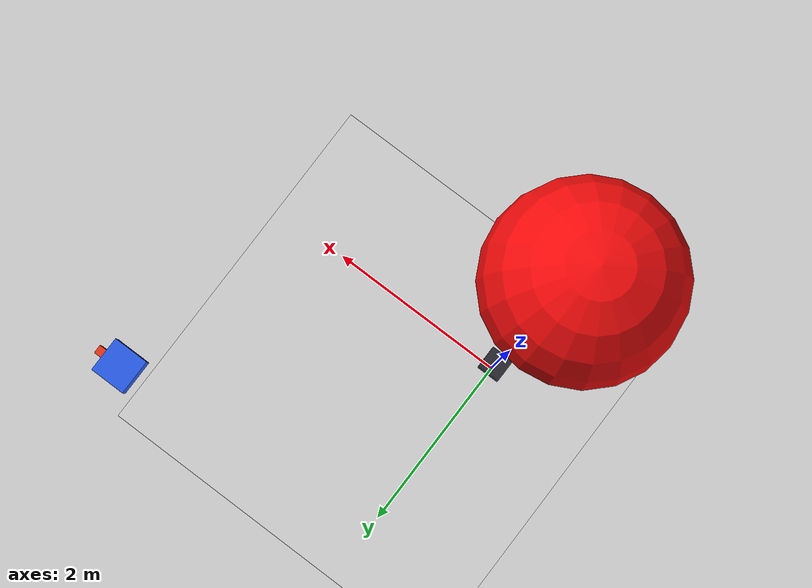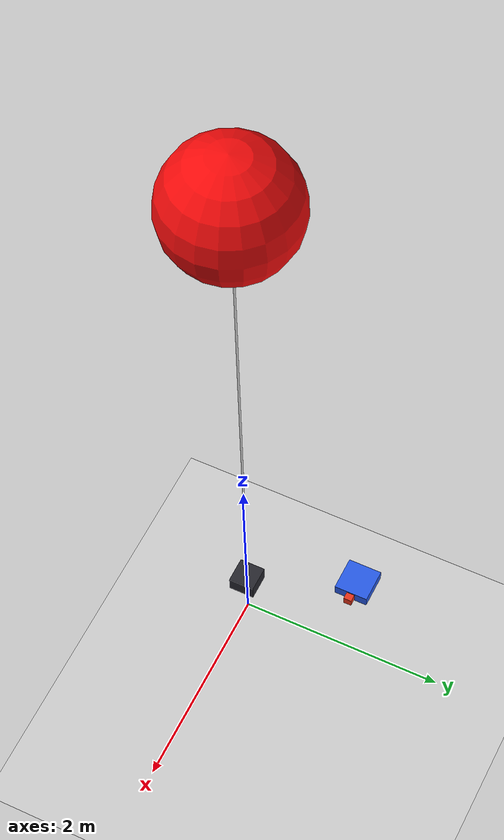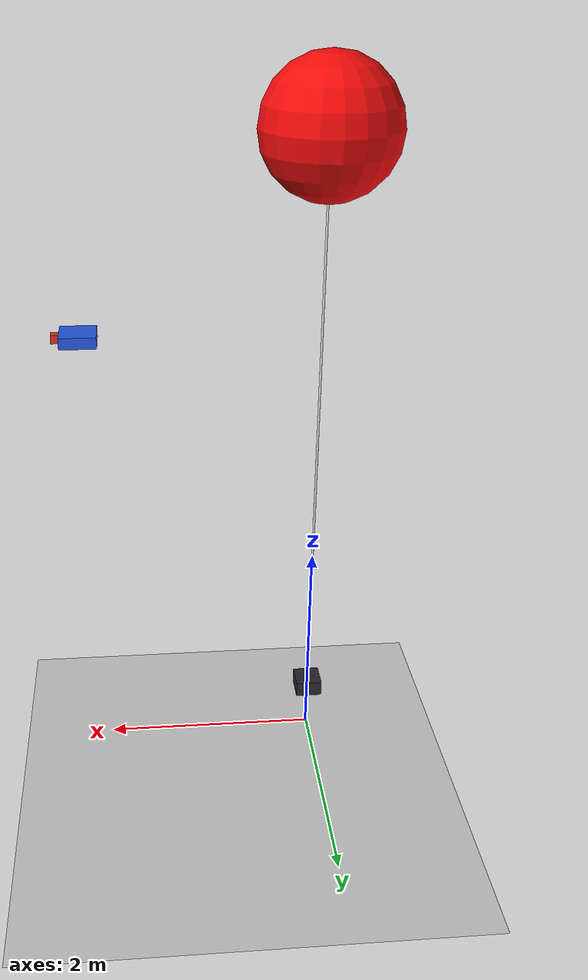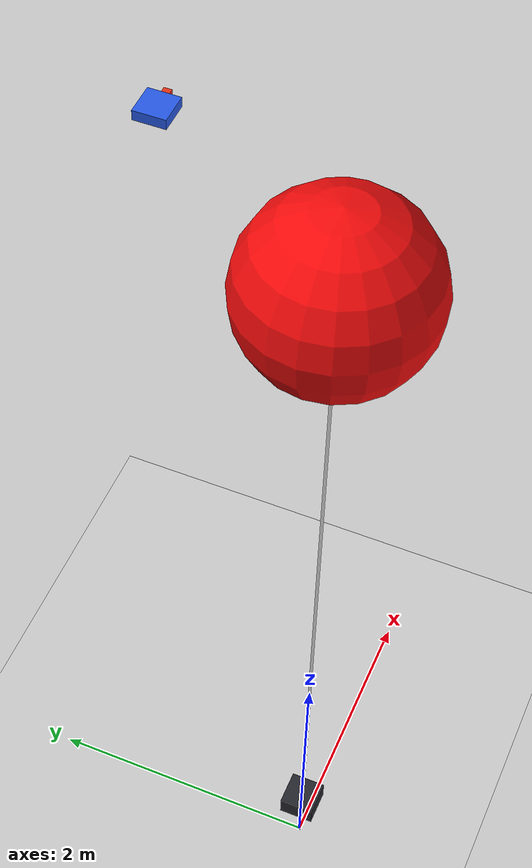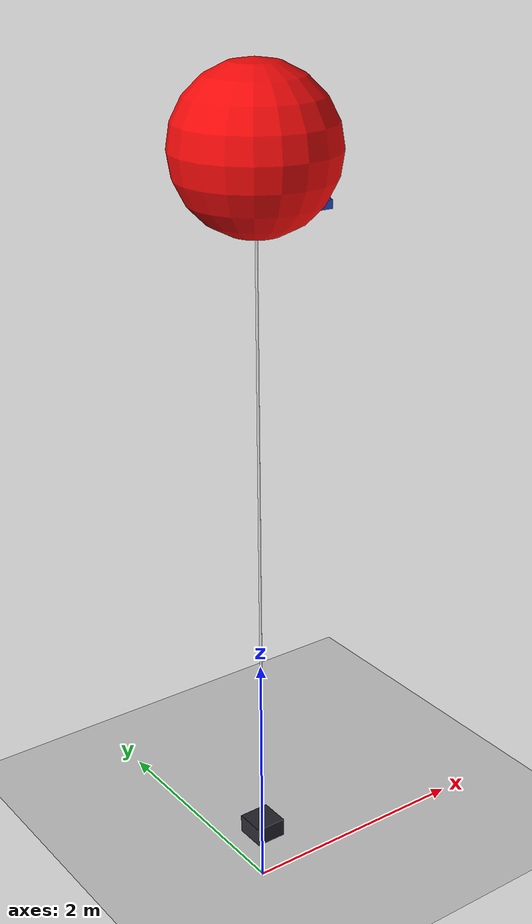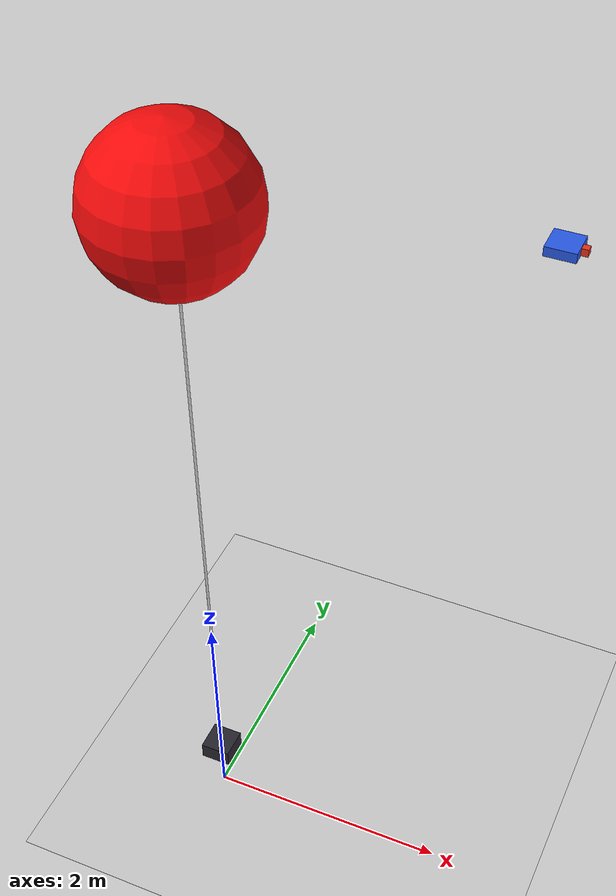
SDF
<?xml version="1.0"?>

<sdf version="1.6">
  <world name="balloon_observation">
    <gravity>0 0 -9.81</gravity>

    <include>
      <uri>model://sun</uri>
    </include>

    <include>
      <uri>model://ground_plane</uri>
    </include>

    <scene>
      <ambient>0.65 0.65 0.65 1</ambient>
      <background>0.45 0.70 0.95 1</background>
      <shadows>true</shadows>
    </scene>

    <model name="fixed_observation_camera">
      <static>true</static>
      <pose>0 0 0.5 0 0 0</pose>

      <link name="camera_link">
        <visual name="housing">
          <geometry>
            <box>
              <size>0.25 0.25 0.15</size>
            </box>
          </geometry>
          <material>
            <ambient>0.15 0.15 0.18 1</ambient>
            <diffuse>0.15 0.15 0.18 1</diffuse>
          </material>
        </visual>

        <sensor name="up_camera" type="camera">
          <pose>0 0 0.10 0 -1.57079632679 0</pose>
          <always_on>true</always_on>
          <update_rate>30</update_rate>
          <visualize>true</visualize>
          <topic>/observation/up_camera/image</topic>

          <camera>
            <horizontal_fov>1.0471975512</horizontal_fov>
            <image>
              <width>1280</width>
              <height>720</height>
              <format>R8G8B8</format>
            </image>
            <clip>
              <near>0.05</near>
              <far>100</far>
            </clip>
          </camera>
        </sensor>
      </link>
    </model>

    <model name="red_balloon">
      <static>true</static>
      <pose>0 0 6 0 0 0</pose>

      <link name="balloon_link">
        <visual name="balloon">
          <geometry>
            <sphere>
              <radius>0.6</radius>
            </sphere>
          </geometry>
          <material>
            <ambient>0.8 0.03 0.03 1</ambient>
            <diffuse>0.95 0.04 0.04 1</diffuse>
            <specular>0.5 0.5 0.5 1</specular>
          </material>
        </visual>

        <visual name="string">
          <pose>0 0 -3 0 0 0</pose>
          <geometry>
            <cylinder>
              <radius>0.01</radius>
              <length>6</length>
            </cylinder>
          </geometry>
          <material>
            <ambient>0.9 0.9 0.9 1</ambient>
            <diffuse>0.9 0.9 0.9 1</diffuse>
          </material>
        </visual>
      </link>
    </model>

    <model name="drone_model">
      <pose>2 2 5 0 0 0</pose>
      <link name="body">
        <gravity>false</gravity>
        <kinematic>true</kinematic>
        <visual name="frame">
          <geometry><box><size>0.25 0.25 0.08</size></box></geometry>
          <material><ambient>0.1 0.3 0.8 1</ambient><diffuse>0.15 0.35 0.9 1</diffuse></material>
        </visual>
        <visual name="marker">
          <pose>0.15 0 0 0 0 0</pose>
          <geometry><box><size>0.06 0.06 0.06</size></box></geometry>
          <material><ambient>0.9 0.2 0.1 1</ambient><diffuse>0.9 0.2 0.1 1</diffuse></material>
        </visual>
      </link>
    </model>

    <gui fullscreen="0">
      <camera name="overview">
        <pose>10 -10 7 0 0.25 2.35619449</pose>
        <view_controller>orbit</view_controller>
      </camera>
    </gui>
  </world>
</sdf>
